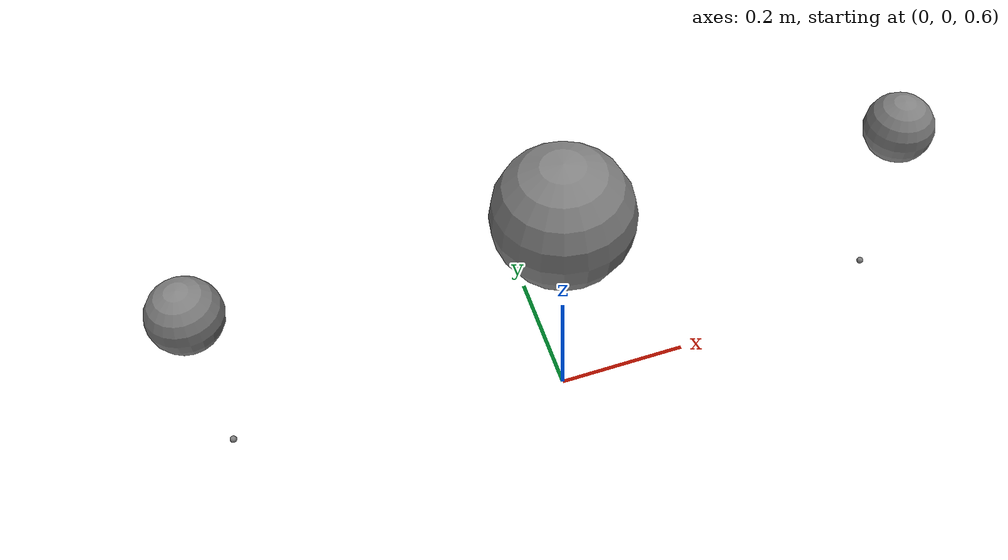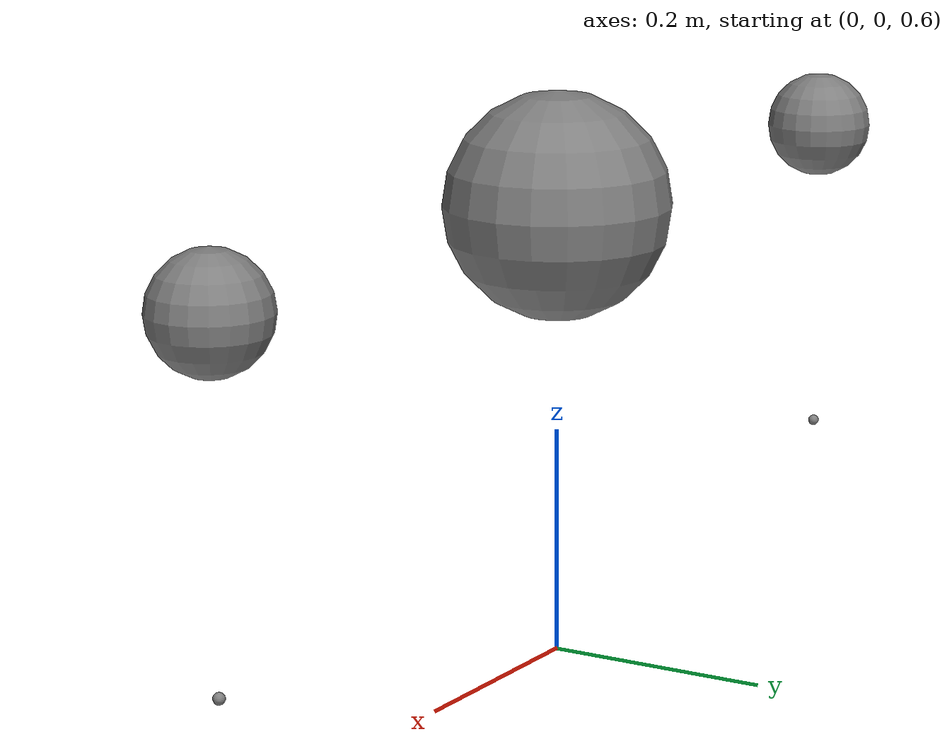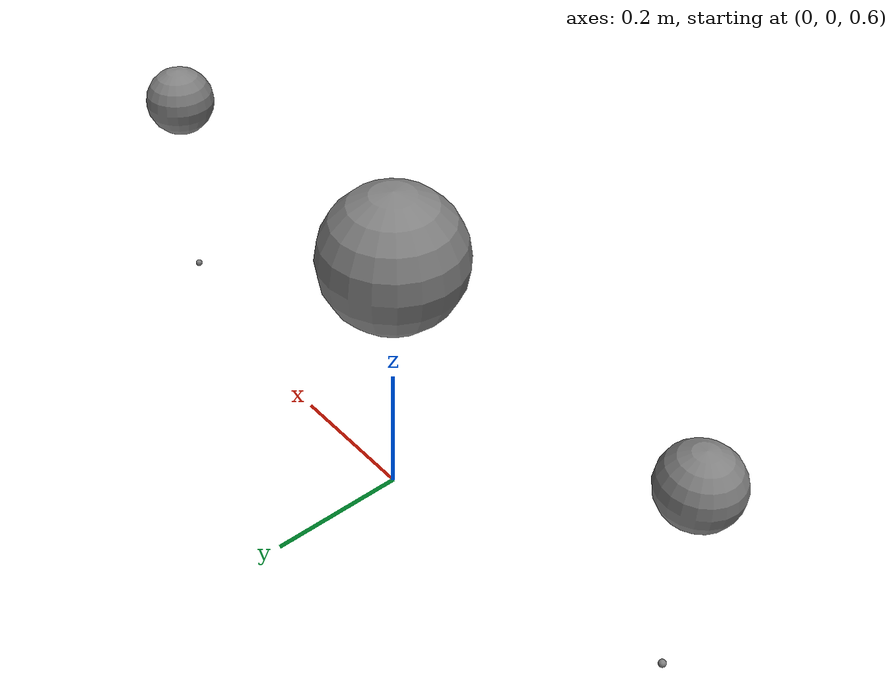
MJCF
<mujoco model="partial_chain">
            <worldbody>
                <body name="base" pos="0 0 1">
                    <joint name="j_base" type="hinge" axis="0 1 0"/>
                    <geom type="sphere" size="0.1" mass="1.0"/>
                    <body name="left" pos="0.5 0 0">
                        <joint name="j_left" type="hinge" axis="0 1 0"/>
                        <geom type="sphere" size="0.05" mass="0.5"/>
                        <site name="s_left" pos="0 0 -0.3"/>
                    </body>
                    <body name="right" pos="-0.5 0 0">
                        <joint name="j_right" type="hinge" axis="0 1 0"/>
                        <geom type="sphere" size="0.05" mass="0.5"/>
                        <site name="s_right" pos="0 0 -0.3"/>
                    </body>
                </body>
            </worldbody>
            <actuator>
                <general name="a1" site="s_left" refsite="s_right" gear="1 0 0 0 0 0"
                         ctrlrange="-100 100"/>
            </actuator>
        </mujoco>
